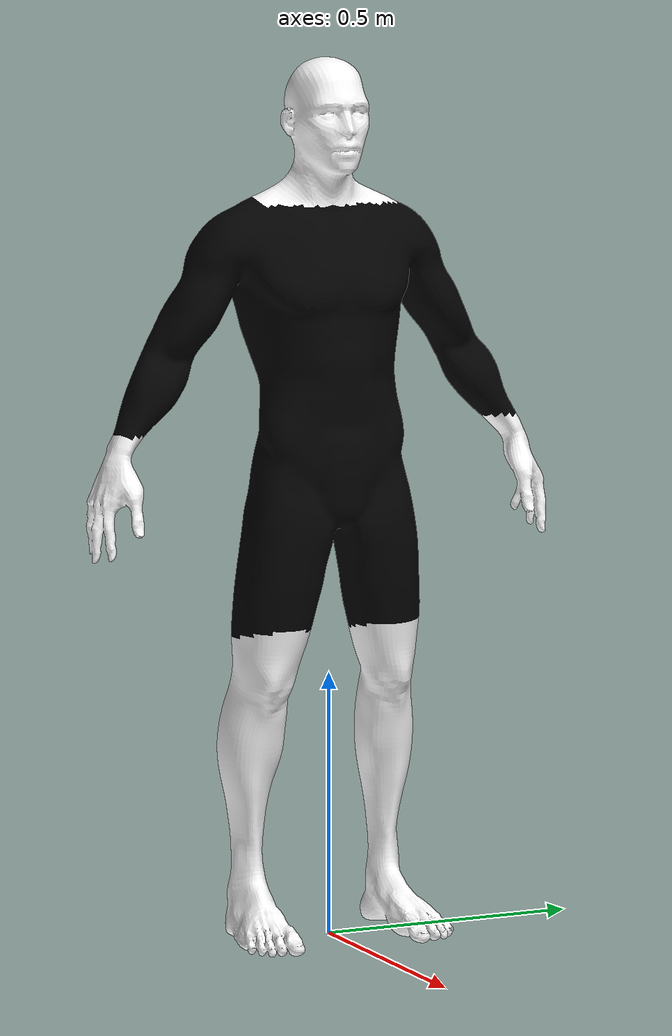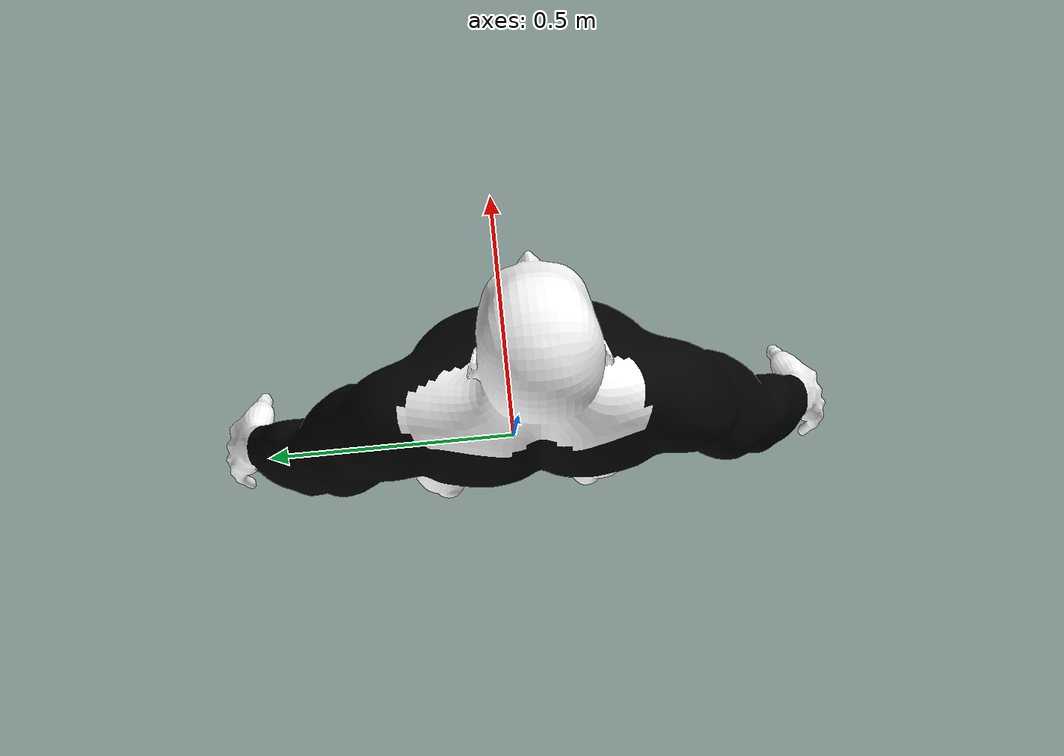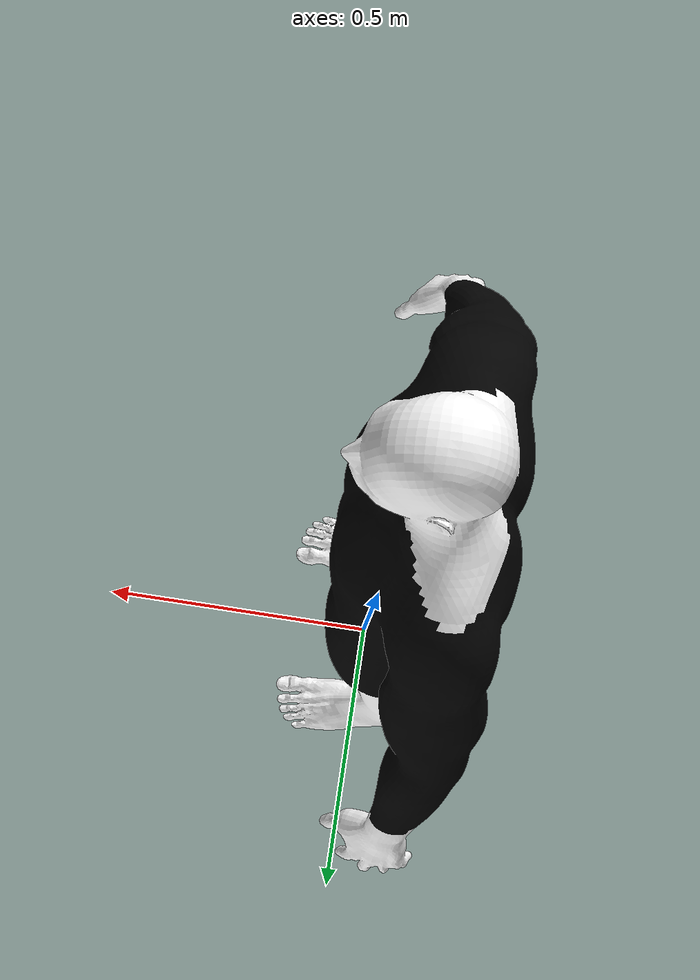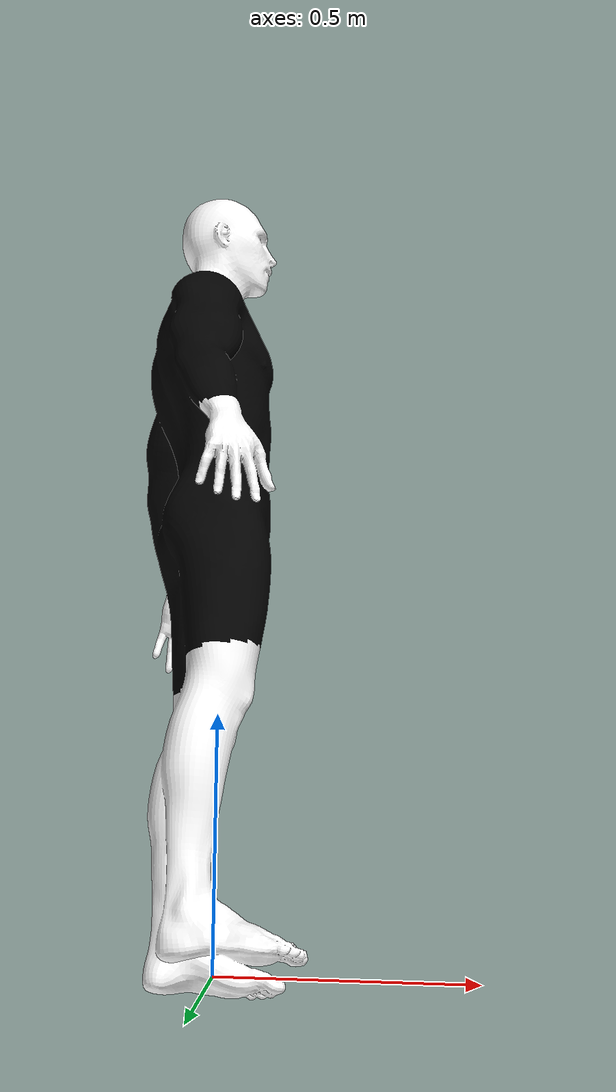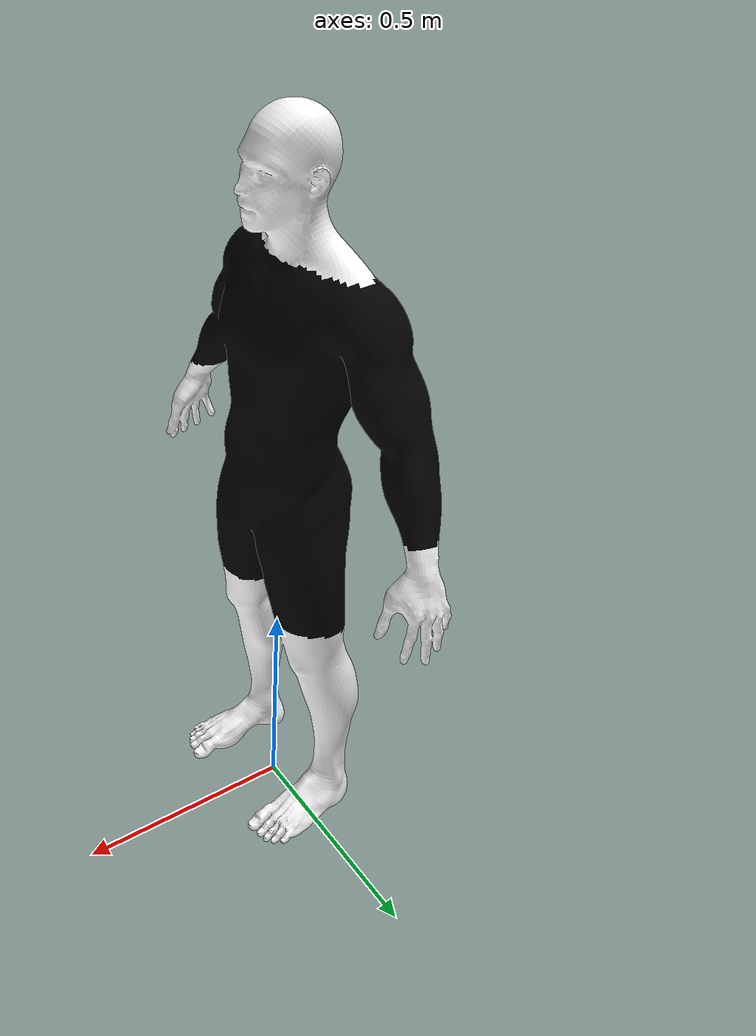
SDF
<?xml version="1.0" ?>
<sdf version='1.5'>
  <model name='A_male'>
    <static>true</static>
      <link name='A_male'>
         <collision name='A_malec'>
          <geometry>
            <mesh>
              <scale>0.08 0.08 0.08</scale>
              <uri>model://A_male/male4.dae</uri>
            </mesh>
          </geometry>
        </collision>
        <visual name='A_malev'>
          <geometry>
            <mesh>
              <scale>0.08 0.08 0.08</scale>
              <uri>model://A_male/male4.dae</uri>
            </mesh>
          </geometry>
          <material>
            <script>
              <name>A_male</name>
              <uri>model://A_male/male4.dae</uri>
            </script>
          </material>
        </visual>
      </link>
  </model>
</sdf>
